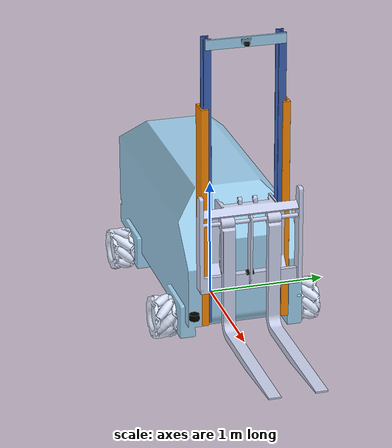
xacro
<?xml version="1.0" ?>
<robot name="agv_mecanum" xmlns:xacro="http://www.ros.org/wiki/xacro">

  <!-- XACRO PROPERTIES (global variables)                                 -->
  <xacro:include filename="xacro_properties/xacro_properties.xacro"/>

  <!-- MODULES (structure, sensors)                                        -->
  <xacro:include filename="modules/chassis_and_wheels.xacro"/>
  <xacro:include filename="modules/camera.xacro"/>
  <xacro:include filename="modules/lidar.xacro"/>

  <!-- GAZEBO (plugins, properties)                                        -->
  <xacro:include filename="gazebo/gazebo_plugins.xacro"/>
  <xacro:include filename="gazebo/gazebo_properties.xacro"/>

</robot>

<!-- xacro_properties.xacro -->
<!-- Generated using onshape-to-robot -->
<!-- Onshape document_id: f29662d0e650ae030781df1d / workspace_id: b19b9cb673a72162998aaff3 -->
<robot xmlns:xacro = "http://www.ros.org/wiki/xacro">
    <xacro:property name="package_name" value = "agv_description"/>
    <xacro:property name="robot_name" value = "my_robot"/>
</robot>

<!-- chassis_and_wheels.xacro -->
<robot xmlns:xacro="http://www.ros.org/wiki/xacro">

  <!-- WHEEL DIMENSIONS                                                    -->
  <xacro:property name="wheel_radius" value="0.1778"/>
  <xacro:property name="wheel_length" value="0.178"/>
  <xacro:property name="wheel_mass" value="30.2"/>

  <!-- Macro computing the inertia of a cylinder aligned with the local Z axis -->
  <xacro:macro name="cylinder_inertia" params="m r h">
    <inertia
      ixx="${(1/12)*m*(3*r*r+h*h)}" ixy="0" ixz="0"
      iyy="${(1/12)*m*(3*r*r+h*h)}" iyz="0"
      izz="${(1/2)*m*r*r}"/>
  </xacro:macro>
  <!-- BASE FOOTPRINT — virtual frame on the floor (robot root)            -->
  <link name="base_footprint_link"/>

  <joint name="base_joint" type="fixed">
    <parent link="base_footprint_link"/>
    <child link="chassis_link"/>
    <!-- chassis_link sits 0.2068m above the floor so that
         the wheels (radius 0.1778) touch Z=0 -->
    <origin xyz="0 0 0.2068" rpy="0 0 0"/>
  </joint>

  <!-- CHASSIS                                                             -->
  <link name="chassis_link">
    <inertial>
      <origin xyz="-0.169624 -9.35224e-09 0.443611" rpy="0 0 0"/>
      <mass value="5267.35"/>
      <inertia ixx="836.106" ixy="0.217243" ixz="59.6446" iyy="2359.49" iyz="-0.000517498" izz="2319.55"/>
    </inertial>
    <visual>
      <origin xyz="1.03 0.475 0" rpy="0 0 ${pi}"/>
      <geometry>
        <mesh filename="package://${package_name}/assets/chassis.stl"/>
      </geometry>
      <material name="chassis_material">
        <color rgba="0.615686 0.811765 0.929412 1.0"/>
      </material>
    </visual>
    <collision>
      <origin xyz="1.03 0.475 0" rpy="0 0 ${pi}"/>
      <geometry>
        <mesh filename="package://${package_name}/assets/chassis.stl"/>
      </geometry>
    </collision>
  </link>

  <!-- FIXED MAST                                                          -->
  <link name="fixed_mast_link">
    <inertial>
      <origin xyz="-0.0786 0.363 -0.926693" rpy="0 0 0"/>
      <mass value="133.004"/>
      <inertia ixx="53.306" ixy="0" ixz="0" iyy="38.2612" iyz="0" izz="15.9098"/>
    </inertial>
    <visual>
      <origin xyz="0 0 0" rpy="${-pi/2} 0 ${pi}"/>
      <geometry>
        <mesh filename="package://${package_name}/assets/fixed_mast.stl"/>
      </geometry>
      <material name="fixed_mast_material">
        <color rgba="0.972549 0.529412 0.00392157 1.0"/>
      </material>
    </visual>
    <collision>
      <origin xyz="0 0 0" rpy="${-pi/2} 0 ${pi}"/>
      <geometry>
        <mesh filename="package://${package_name}/assets/fixed_mast.stl"/>
      </geometry>
    </collision>
  </link>

  <joint name="fixed_mast_joint" type="fixed">
    <origin xyz="0.87 -0.363 0" rpy="${pi} 0 ${pi}"/>
    <parent link="chassis_link"/>
    <child link="fixed_mast_link"/>
  </joint>

  <!-- MOVING MAST                                                         -->
  <link name="moving_mast_link">
    <inertial>
      <origin xyz="-0.307562 -0.049 -1.03757" rpy="0 0 0"/>
      <mass value="90.8635"/>
      <inertia ixx="41.8922" ixy="0" ixz="0" iyy="50.1077" iyz="0" izz="8.46809"/>
    </inertial>
    <visual>
      <origin xyz="-0.00156437 -0.052 -0.81" rpy="0 0 0"/>
      <geometry>
        <mesh filename="package://${package_name}/assets/moving_mast.stl"/>
      </geometry>
      <material name="moving_mast_material">
        <color rgba="0.231373 0.380392 0.705882 1.0"/>
      </material>
    </visual>
    <collision>
      <origin xyz="-0.00156437 -0.052 -0.81" rpy="0 0 0"/>
      <geometry>
        <mesh filename="package://${package_name}/assets/moving_mast.stl"/>
      </geometry>
    </collision>
  </link>

  <joint name="moving_mast_joint" type="prismatic">
    <origin xyz="-0.0294 0.0552 -0.2" rpy="0 0 ${-pi/2}"/>
    <parent link="fixed_mast_link"/>
    <child link="moving_mast_link"/>
    <axis xyz="0 0 1"/> <limit effort="10000" velocity="1.0" lower="-1.25" upper="0.0"/>
  </joint>

  <!-- CAMERA SUPPORT (mechanical mount for the mast camera)               -->
  <link name="camera_suport_link">
    <inertial>
      <origin xyz="0 0 0" rpy="0 0 0"/>
      <mass value="1e-09"/>
      <inertia ixx="1e-09" ixy="0" ixz="0" iyy="1e-09" iyz="0" izz="1e-09"/>
    </inertial>
    <visual>
      <origin xyz="0 0.08 0" rpy="${pi} 0 0"/>
      <geometry>
        <mesh filename="package://${package_name}/assets/camera_suport.stl"/>
      </geometry>
      <material name="camera_suport_material">
        <color rgba="0.615686 0.811765 0.929412 1.0"/>
      </material>
    </visual>
    <collision>
      <origin xyz="0 0.08 0" rpy="${pi} 0 0"/>
      <geometry>
        <mesh filename="package://${package_name}/assets/camera_suport.stl"/>
      </geometry>
    </collision>
  </link>

  <joint name="camera_suport_joint" type="fixed">
    <origin xyz="0.0185 -0.098 -2.21" rpy="${pi/2} 0 ${-pi}"/>
    <parent link="moving_mast_link"/>
    <child link="camera_suport_link"/>
  </joint>

  <!-- FORK                                                                -->
  <link name="fork_link">
    <inertial>
      <origin xyz="-0.275813 0.372147 0.104812" rpy="0 0 0"/>
      <mass value="328.991"/>
      <inertia ixx="74.2294" ixy="0" ixz="0" iyy="64.7944" iyz="24.2368" izz="52.9936"/>
    </inertial>

    <visual>
      <origin xyz="-0.275814 0.266525 0.0237551" rpy="${pi/2} 0 ${pi/2}"/>
      <geometry>
        <mesh filename="package://${package_name}/assets/fork_part_5.stl"/>
      </geometry>
      <material name="fork_material">
        <color rgba="0.796078 0.823529 0.937255 1.0"/>
      </material>
    </visual>
    <collision>
      <origin xyz="-0.275814 0.266525 0.0237551" rpy="${pi/2} 0 ${pi/2}"/>
      <geometry>
        <mesh filename="package://${package_name}/assets/fork_part_5.stl"/>
      </geometry>
    </collision>

    <visual>
      <origin xyz="-0.275814 0.266525 0.0237551" rpy="${pi/2} 0 ${pi/2}"/>
      <geometry>
        <mesh filename="package://${package_name}/assets/fork_part_2.stl"/>
      </geometry>
      <material name="fork_material"/>
    </visual>
    <collision>
      <origin xyz="-0.275814 0.266525 0.0237551" rpy="${pi/2} 0 ${pi/2}"/>
      <geometry>
        <mesh filename="package://${package_name}/assets/fork_part_2.stl"/>
      </geometry>
    </collision>

    <visual>
      <origin xyz="-0.275814 0.266525 0.0237551" rpy="${pi/2} 0 ${pi/2}"/>
      <geometry>
        <mesh filename="package://${package_name}/assets/fork_part_4.stl"/>
      </geometry>
      <material name="fork_material"/>
    </visual>
    <collision>
      <origin xyz="-0.275814 0.266525 0.0237551" rpy="${pi/2} 0 ${pi/2}"/>
      <geometry>
        <mesh filename="package://${package_name}/assets/fork_part_4.stl"/>
      </geometry>
    </collision>

    <visual>
      <origin xyz="-0.275814 0.266525 0.0237551" rpy="${pi/2} 0 ${pi/2}"/>
      <geometry>
        <mesh filename="package://${package_name}/assets/fork_part_1.stl"/>
      </geometry>
      <material name="fork_material"/>
    </visual>
    <collision>
      <origin xyz="-0.275814 0.266525 0.0237551" rpy="${pi/2} 0 ${pi/2}"/>
      <geometry>
        <mesh filename="package://${package_name}/assets/fork_part_1.stl"/>
      </geometry>
    </collision>

    <visual>
      <origin xyz="-0.275814 0.266525 0.0237551" rpy="${pi/2} 0 ${pi/2}"/>
      <geometry>
        <mesh filename="package://${package_name}/assets/fork_part_3.stl"/>
      </geometry>
      <material name="fork_material"/>
    </visual>
    <collision>
      <origin xyz="-0.275814 0.266525 0.0237551" rpy="${pi/2} 0 ${pi/2}"/>
      <geometry>
        <mesh filename="package://${package_name}/assets/fork_part_3.stl"/>
      </geometry>
    </collision>

    <visual>
      <origin xyz="-0.088 0.292627 -0.316923" rpy="${pi/2} 0 ${-pi/2}"/>
      <geometry>
        <mesh filename="package://${package_name}/assets/fork_part_6.stl"/>
      </geometry>
      <material name="fork_material"/>
    </visual>
    <collision>
      <origin xyz="-0.088 0.292627 -0.316923" rpy="${pi/2} 0 ${-pi/2}"/>
      <geometry>
        <mesh filename="package://${package_name}/assets/fork_part_6.stl"/>
      </geometry>
    </collision>

    <visual>
      <origin xyz="-0.460 0.292627 -0.316923" rpy="${pi/2} 0 ${-pi/2}"/>
      <geometry>
        <mesh filename="package://${package_name}/assets/fork_part_6_mirrored.stl"/>
      </geometry>
      <material name="fork_material"/>
    </visual>
    <collision>
      <origin xyz="-0.460 0.292627 -0.316923" rpy="${pi/2} 0 ${-pi/2}"/>
      <geometry>
        <mesh filename="package://${package_name}/assets/fork_part_6_mirrored.stl"/>
      </geometry>
    </collision>
  </link>

  <joint name="fork_joint" type="prismatic">
    <origin xyz="-0.0340524 -0.0136849 -0.15" rpy="${pi} 0 0"/>
    <parent link="moving_mast_link"/>
    <child link="fork_link"/>
    <!-- lower=-0.15: free lift — lets the tine go down to 0.03 m above the floor
         (at fork=0 the tine base is at 0.18 m; the pallet pocket is at 0.022-0.100) -->
    <axis xyz="0 0 1"/> <limit effort="10000" velocity="1.0" lower="-0.15" upper="1.25"/>
  </joint>

  <!-- WHEELS (mecanum) — cylinder for collision and inertia               -->

  <!-- FRONT RIGHT WHEEL -->
  <link name="front_right_wheel_link">
    <inertial>
      <origin xyz="0 0 -0.0836" rpy="0 0 0"/>
      <mass value="${wheel_mass}"/>
      <xacro:cylinder_inertia m="${wheel_mass}" r="${wheel_radius}" h="${wheel_length}"/>
    </inertial>
    <visual>
      <origin xyz="0 -0.2145 0.128" rpy="${-pi/2} ${-pi/2} 0"/>
      <geometry>
        <mesh filename="package://${package_name}/assets/wheel_left.stl"/>
      </geometry>
      <material name="wheel_material">
        <color rgba="0.866667 0.909804 1 1.0"/>
      </material>
    </visual>
    <collision>
      <origin xyz="0 0 ${-0.2145/2}" rpy="0 0 0"/>
      <geometry>
        <cylinder radius="${wheel_radius}" length="${wheel_length}"/>
      </geometry>
    </collision>
  </link>

  <joint name="front_right_wheel_joint" type="continuous">
    <origin xyz="0.7 -0.522 -0.029" rpy="${-pi/2} ${-pi/2} 0"/>
    <parent link="chassis_link"/>
    <child link="front_right_wheel_link"/>
    <axis xyz="0 0 1"/>
    <limit effort="10000" velocity="1000"/>
  </joint>

  <!-- FRONT LEFT WHEEL -->
  <link name="front_left_wheel_link">
    <inertial>
      <origin xyz="0 0 -0.0836" rpy="0 0 0"/>
      <mass value="${wheel_mass}"/>
      <xacro:cylinder_inertia m="${wheel_mass}" r="${wheel_radius}" h="${wheel_length}"/>
    </inertial>
    <visual>
      <origin xyz="0 0.2145 0.128" rpy="${pi/2} ${pi/2} 0"/>
      <geometry>
        <mesh filename="package://${package_name}/assets/wheel_right.stl"/>
      </geometry>
      <material name="wheel_material"/>
    </visual>
    <collision>
      <origin xyz="0 0 ${-0.2145/2}" rpy="0 0 0"/>
      <geometry>
        <cylinder radius="${wheel_radius}" length="${wheel_length}"/>
      </geometry>
    </collision>
  </link>

  <joint name="front_left_wheel_joint" type="continuous">
    <origin xyz="0.7 0.512 -0.029" rpy="${pi/2} ${-pi/2} 0"/>
    <parent link="chassis_link"/>
    <child link="front_left_wheel_link"/>
    <axis xyz="0 0 -1"/>
    <limit effort="10000" velocity="1000"/>
  </joint>

  <!-- REAR LEFT WHEEL -->
  <link name ="rear_left_wheel_link">
    <inertial>
      <origin xyz="0 0 -0.0836" rpy="0 0 0"/>
      <mass value="${wheel_mass}"/>
      <xacro:cylinder_inertia m="${wheel_mass}" r="${wheel_radius}" h="${wheel_length}"/>
    </inertial>
    <visual>
      <origin xyz="0 -0.2145 0.128" rpy="${-pi/2} ${-pi/2} 0"/>
      <geometry>
        <mesh filename="package://${package_name}/assets/wheel_left.stl"/>
      </geometry>
      <material name="wheel_material"/>
    </visual>
    <collision>
      <origin xyz="0 0 ${-0.2145/2}" rpy="0 0 0"/>
      <geometry>
        <cylinder radius="${wheel_radius}" length="${wheel_length}"/>
      </geometry>
    </collision>
  </link>

  <joint name="rear_left_wheel_joint" type="continuous">
    <origin xyz="-0.7 0.512 -0.029" rpy="${pi/2} ${-pi/2} 0"/>
    <parent link="chassis_link"/>
    <child link="rear_left_wheel_link"/>
    <axis xyz="0 0 -1"/>
    <limit effort="10000" velocity="1000"/>
  </joint>

  <!-- REAR RIGHT WHEEL -->
  <link name="rear_right_wheel_link">
    <inertial>
      <origin xyz="0 0 -0.0836" rpy="0 0 0"/>
      <mass value="${wheel_mass}"/>
      <xacro:cylinder_inertia m="${wheel_mass}" r="${wheel_radius}" h="${wheel_length}"/>
    </inertial>
    <visual>
      <origin xyz="0 0.2145 0.128" rpy="${pi/2} ${pi/2} 0"/>
      <geometry>
        <mesh filename="package://${package_name}/assets/wheel_right.stl"/>
      </geometry>
      <material name="wheel_material"/>
    </visual>
    <collision>
      <origin xyz="0 0 ${-0.2145/2}" rpy="0 0 0"/>
      <geometry>
        <cylinder radius="${wheel_radius}" length="${wheel_length}"/>
      </geometry>
    </collision>
  </link>

  <joint name="rear_right_wheel_joint" type="continuous">
    <origin xyz="-0.7 -0.522 -0.029" rpy="${-pi/2} ${-pi/2} 0"/>
    <parent link="chassis_link"/>
    <child link="rear_right_wheel_link"/>
    <axis xyz="0 0 1"/>
    <limit effort="10000" velocity="1000"/>
  </joint>

</robot>

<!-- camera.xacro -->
<!-- Adapted from onshape-to-robot output for the new AGV model -->
<robot xmlns:xacro="http://www.ros.org/wiki/xacro">

  <!-- MAST CAMERA (on camera_suport_link, tilted downwards)               -->
  <link name="mast_camera_link">
    <inertial>
      <origin xyz="0 0 0" rpy="0 0 0"/>
      <mass value="1e-09"/>
      <inertia ixx="1e-09" ixy="0" ixz="0" iyy="1e-09" iyz="0" izz="1e-09"/>
    </inertial>
    <visual>
      <origin xyz="0.03 0.02 0" rpy="${-pi} 0 0"/>
      <geometry>
        <mesh filename="package://agv_description/assets/camera.stl"/>
      </geometry>
      <material name="camera_material">
        <color rgba="0 0 0 1"/>
      </material>
    </visual>
    <collision>
      <origin xyz="0.03 0.02 0" rpy="${-pi} 0 0"/>
      <geometry>
        <mesh filename="package://agv_description/assets/camera.stl"/>
      </geometry>
    </collision>
  </link>

  <joint name="mast_camera_joint" type="fixed">
    <origin xyz="0.325 0.035 -0.0290993" rpy="0 ${pi/2 + 0.349066} ${-pi/2}"/>
    <parent link="camera_suport_link"/>
    <child link="mast_camera_link"/>
    <axis xyz="0 0 1"/>
    <limit effort="100" velocity="100"/>
  </joint>

  <!-- Optical frame for the mast camera (ROS Z-forward convention)  -->
  <link name="mast_camera_optical_link"/>

  <joint name="mast_camera_optical_joint" type="fixed">
    <origin xyz="0 0 0" rpy="${-pi/2} 0 ${-pi/2}"/>
    <parent link="mast_camera_link"/>
    <child link="mast_camera_optical_link"/>
  </joint>

  <!-- FORK CAMERA (between the fork tines)                                -->
  <link name="fork_camera_link">
    <inertial>
      <origin xyz="0 0 0" rpy="0 0 0"/>
      <mass value="1e-09"/>
      <inertia ixx="1e-09" ixy="0" ixz="0" iyy="1e-09" iyz="0" izz="1e-09"/>
    </inertial>
    <visual>
      <origin xyz="-0.02 0.03 0" rpy="${pi} 0 ${pi/2}"/>
      <geometry>
        <mesh filename="package://agv_description/assets/camera.stl"/>
      </geometry>
      <material name="camera_material"/>
    </visual>
    <collision>
      <origin xyz="-0.02 0.03 0" rpy="${pi} 0 ${pi/2}"/>
      <geometry>
        <mesh filename="package://agv_description/assets/camera.stl"/>
      </geometry>
    </collision>
  </link>

  <joint name="fork_camera_joint" type="fixed">
    <origin xyz="-0.275814 0.232627 0.143" rpy="0 ${30*pi/180} ${pi/2}"/>
    <parent link="fork_link"/>
    <child link="fork_camera_link"/>
    <axis xyz="0 0 1"/>
    <limit effort="100" velocity="100"/>
  </joint>

  <!-- Optical frame for the fork camera (ROS Z-forward convention)       -->
  <link name="fork_camera_optical_link"/>

  <joint name="fork_camera_optical_joint" type="fixed">
    <origin xyz="0 0 0" rpy="${-pi/2} 0 ${-pi/2}"/>
    <parent link="fork_camera_link"/>
    <child link="fork_camera_optical_link"/>
  </joint>

</robot>

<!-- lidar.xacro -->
<!-- Adapted from onshape-to-robot output for the new AGV model -->
<robot xmlns:xacro="http://www.ros.org/wiki/xacro">

  <!-- FRONT-RIGHT LIDAR (front-right corner, main diagonal \)             -->
  <link name="front_right_laser_link">
    <inertial>
      <origin xyz="0 0 0" rpy="0 0 0"/>
      <mass value="1e-09"/>
      <inertia ixx="1e-09" ixy="0" ixz="0" iyy="1e-09" iyz="0" izz="1e-09"/>
    </inertial>
    <visual>
      <origin xyz="0 0 -0.05" rpy="${-pi/2} 0 0"/>
      <geometry>
        <mesh filename="package://agv_description/assets/lidar.stl"/>
      </geometry>
      <material name="lidar_material">
        <color rgba="0 0 0 1"/>
      </material>
    </visual>
    <collision>
      <origin xyz="0 0 -0.05" rpy="${-pi/2} 0 0"/>
      <geometry>
        <mesh filename="package://agv_description/assets/lidar.stl"/>
      </geometry>
    </collision>
  </link>

  <joint name="front_right_laser_joint" type="fixed">
    <origin xyz="1.20 -0.475 0.2055" rpy="0 0 ${-pi/4}"/>
    <parent link="chassis_link"/>
    <child link="front_right_laser_link"/>
    <axis xyz="0 0 1"/>
    <limit effort="100" velocity="100"/>
  </joint>

  <!-- REAR-LEFT LIDAR (rear-left corner, diagonally opposite)             -->
  <link name="rear_left_laser_link">
    <inertial>
      <origin xyz="0 0 0" rpy="0 0 0"/>
      <mass value="1e-09"/>
      <inertia ixx="1e-09" ixy="0" ixz="0" iyy="1e-09" iyz="0" izz="1e-09"/>
    </inertial>
    <visual>
      <origin xyz="0 0 0" rpy="${pi/2} 0 0"/>
      <geometry>
        <mesh filename="package://agv_description/assets/lidar.stl"/>
      </geometry>
      <material name="lidar_material"/>
    </visual>
    <collision>
      <origin xyz="0 0 0" rpy="${pi/2} 0 0"/>
      <geometry>
        <mesh filename="package://agv_description/assets/lidar.stl"/>
      </geometry>
    </collision>
  </link>

  <!-- Positive Y = left side. Yaw 135 deg: bisector of the rear-left
       corner, between the rear (-X) and left (+Y) edges. -->
  <joint name="rear_left_laser_joint" type="fixed">
    <origin xyz="-1.22 0.475 0.2105" rpy="0 0 ${3*pi/4}"/>
    <parent link="chassis_link"/>
    <child link="rear_left_laser_link"/>
    <axis xyz="0 0 1"/>
    <limit effort="100" velocity="100"/>
  </joint>

</robot>
